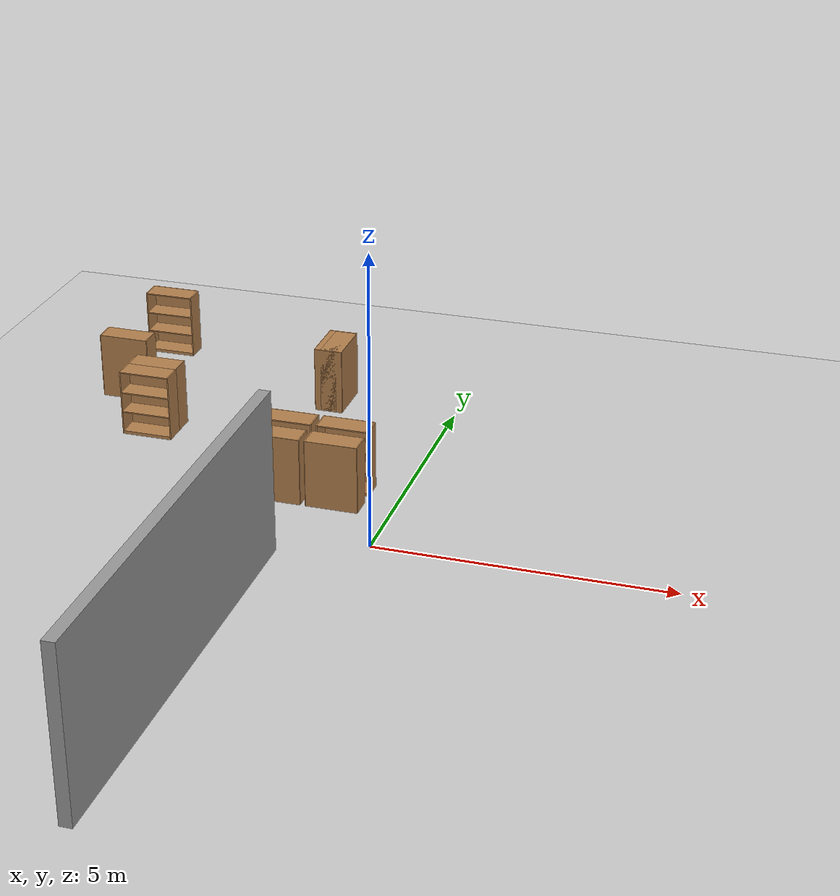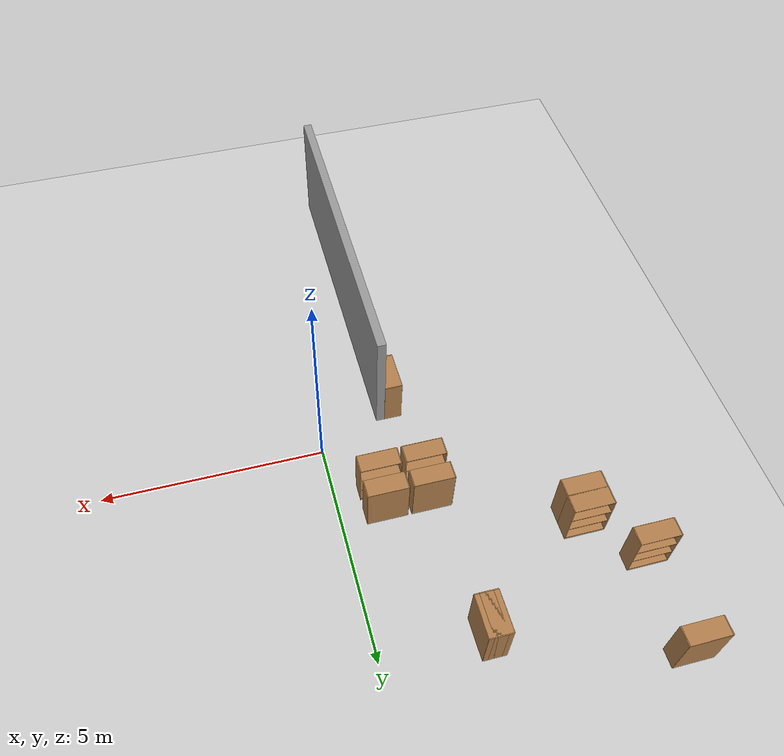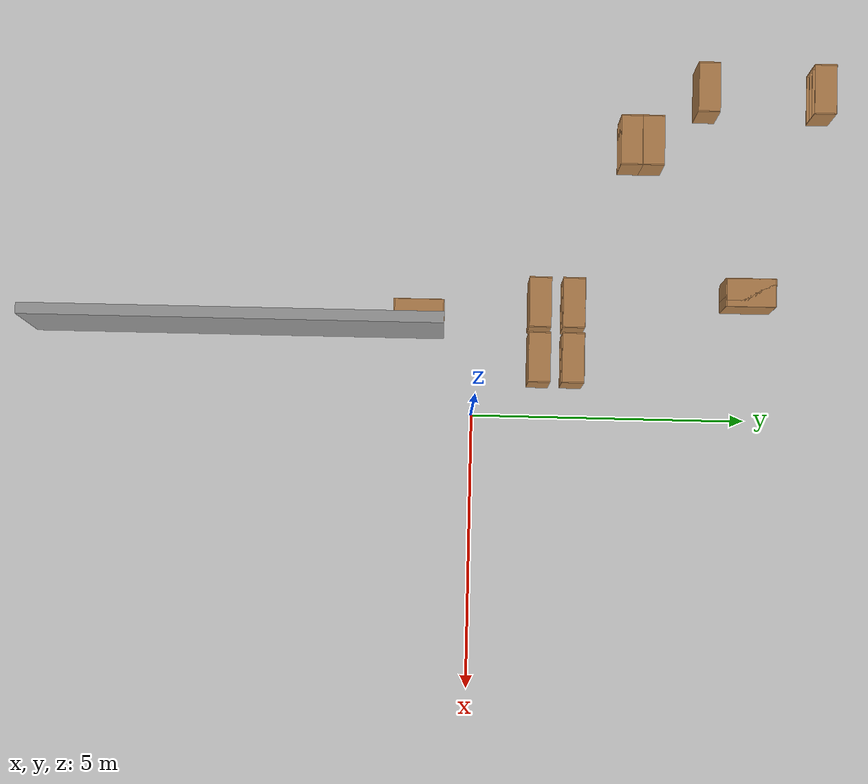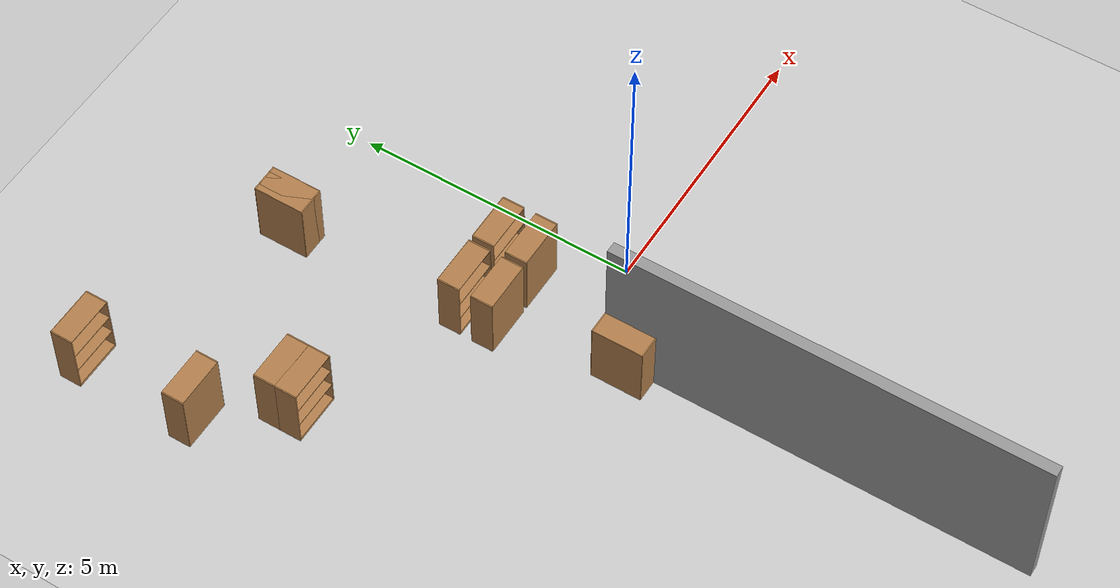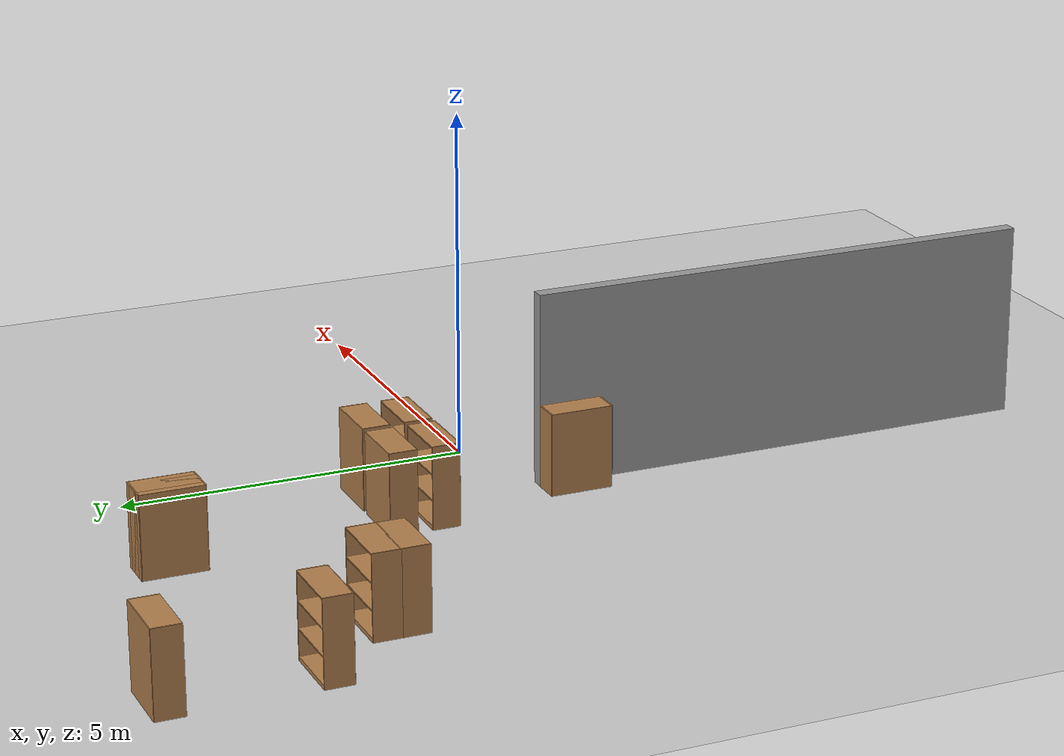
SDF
<sdf version="1.4">
 <world name="default">
  <include><uri>model://sun</uri></include>
  <include><uri>model://ground_plane</uri></include>
  <model name="bookshelf">
   <static>1</static>
   <link name="link">
    <inertial><mass>1</mass></inertial>
    <collision name="back">
     <pose>0 0.005 0.6 0 -0 0</pose>
     <geometry><box><size>0.9 0.01 1.2</size></box></geometry>
    </collision>
    <visual name="visual1">
     <pose>0 0.005 0.6 0 -0 0</pose>
     <geometry><box><size>0.9 0.01 1.2</size></box></geometry>
     <material>
      <script><uri>file://media/materials/scripts/gazebo.material</uri><name>Gazebo/Wood</name></script>
     </material>
    </visual>
    <collision name="left_side">
     <pose>0.45 -0.195 0.6 0 -0 0</pose>
     <geometry><box><size>0.02 0.4 1.2</size></box></geometry>
    </collision>
    <visual name="visual2">
     <pose>0.45 -0.195 0.6 0 -0 0</pose>
     <geometry><box><size>0.02 0.4 1.2</size></box></geometry>
     <material>
      <script><uri>file://media/materials/scripts/gazebo.material</uri><name>Gazebo/Wood</name></script>
     </material>
    </visual>
    <collision name="right_side">
     <pose>-0.45 -0.195 0.6 0 -0 0</pose>
     <geometry><box><size>0.02 0.4 1.2</size></box></geometry>
    </collision>
    <visual name="visual3">
     <pose>-0.45 -0.195 0.6 0 -0 0</pose>
     <geometry><box><size>0.02 0.4 1.2</size></box></geometry>
     <material>
      <script><uri>file://media/materials/scripts/gazebo.material</uri><name>Gazebo/Wood</name></script>
     </material>
    </visual>
    <collision name="bottom">
     <pose>0 -0.195 0.03 0 -0 0</pose>
     <geometry><box><size>0.88 0.4 0.06</size></box></geometry>
    </collision>
    <visual name="visual4">
     <pose>0 -0.195 0.03 0 -0 0</pose>
     <geometry><box><size>0.88 0.4 0.06</size></box></geometry>
     <material>
      <script><uri>file://media/materials/scripts/gazebo.material</uri><name>Gazebo/Wood</name></script>
     </material>
    </visual>
    <collision name="top">
     <pose>0 -0.195 1.19 0 -0 0</pose>
     <geometry><box><size>0.88 0.4 0.02</size></box></geometry>
    </collision>
    <visual name="visual5">
     <pose>0 -0.195 1.19 0 -0 0</pose>
     <geometry><box><size>0.88 0.4 0.02</size></box></geometry>
     <material>
      <script><uri>file://media/materials/scripts/gazebo.material</uri><name>Gazebo/Wood</name></script>
     </material>
    </visual>
    <collision name="low_shelf">
     <pose>0 -0.195 0.43 0 -0 0</pose>
     <geometry><box><size>0.88 0.4 0.02</size></box></geometry>
    </collision>
    <visual name="visual6">
     <pose>0 -0.195 0.43 0 -0 0</pose>
     <geometry><box><size>0.88 0.4 0.02</size></box></geometry>
     <material>
      <script><uri>file://media/materials/scripts/gazebo.material</uri><name>Gazebo/Wood</name></script>
     </material>
    </visual>
    <collision name="high_shelf">
     <pose>0 -0.195 0.8 0 -0 0</pose>
     <geometry><box><size>0.88 0.4 0.02</size></box></geometry>
    </collision>
    <visual name="visual7">
     <pose>0 -0.195 0.8 0 -0 0</pose>
     <geometry><box><size>0.88 0.4 0.02</size></box></geometry>
     <material>
      <script><uri>file://media/materials/scripts/gazebo.material</uri><name>Gazebo/Wood</name></script>
     </material>
    </visual>
    <velocity_decay><linear>0</linear><angular>0</angular></velocity_decay>
   </link>
   <pose>-1 2 0 0 -0 0</pose>
  </model>
  <model name="bookshelf_0">
   <static>1</static>
   <link name="link">
    <inertial><mass>1</mass></inertial>
    <collision name="back">
     <pose>0 0.005 0.6 0 -0 0</pose>
     <geometry><box><size>0.9 0.01 1.2</size></box></geometry>
    </collision>
    <visual name="visual1">
     <pose>0 0.005 0.6 0 -0 0</pose>
     <geometry><box><size>0.9 0.01 1.2</size></box></geometry>
     <material>
      <script><uri>file://media/materials/scripts/gazebo.material</uri><name>Gazebo/Wood</name></script>
     </material>
    </visual>
    <collision name="left_side">
     <pose>0.45 -0.195 0.6 0 -0 0</pose>
     <geometry><box><size>0.02 0.4 1.2</size></box></geometry>
    </collision>
    <visual name="visual2">
     <pose>0.45 -0.195 0.6 0 -0 0</pose>
     <geometry><box><size>0.02 0.4 1.2</size></box></geometry>
     <material>
      <script><uri>file://media/materials/scripts/gazebo.material</uri><name>Gazebo/Wood</name></script>
     </material>
    </visual>
    <collision name="right_side">
     <pose>-0.45 -0.195 0.6 0 -0 0</pose>
     <geometry><box><size>0.02 0.4 1.2</size></box></geometry>
    </collision>
    <visual name="visual3">
     <pose>-0.45 -0.195 0.6 0 -0 0</pose>
     <geometry><box><size>0.02 0.4 1.2</size></box></geometry>
     <material>
      <script><uri>file://media/materials/scripts/gazebo.material</uri><name>Gazebo/Wood</name></script>
     </material>
    </visual>
    <collision name="bottom">
     <pose>0 -0.195 0.03 0 -0 0</pose>
     <geometry><box><size>0.88 0.4 0.06</size></box></geometry>
    </collision>
    <visual name="visual4">
     <pose>0 -0.195 0.03 0 -0 0</pose>
     <geometry><box><size>0.88 0.4 0.06</size></box></geometry>
     <material>
      <script><uri>file://media/materials/scripts/gazebo.material</uri><name>Gazebo/Wood</name></script>
     </material>
    </visual>
    <collision name="top">
     <pose>0 -0.195 1.19 0 -0 0</pose>
     <geometry><box><size>0.88 0.4 0.02</size></box></geometry>
    </collision>
    <visual name="visual5">
     <pose>0 -0.195 1.19 0 -0 0</pose>
     <geometry><box><size>0.88 0.4 0.02</size></box></geometry>
     <material>
      <script><uri>file://media/materials/scripts/gazebo.material</uri><name>Gazebo/Wood</name></script>
     </material>
    </visual>
    <collision name="low_shelf">
     <pose>0 -0.195 0.43 0 -0 0</pose>
     <geometry><box><size>0.88 0.4 0.02</size></box></geometry>
    </collision>
    <visual name="visual6">
     <pose>0 -0.195 0.43 0 -0 0</pose>
     <geometry><box><size>0.88 0.4 0.02</size></box></geometry>
     <material>
      <script><uri>file://media/materials/scripts/gazebo.material</uri><name>Gazebo/Wood</name></script>
     </material>
    </visual>
    <collision name="high_shelf">
     <pose>0 -0.195 0.8 0 -0 0</pose>
     <geometry><box><size>0.88 0.4 0.02</size></box></geometry>
    </collision>
    <visual name="visual7">
     <pose>0 -0.195 0.8 0 -0 0</pose>
     <geometry><box><size>0.88 0.4 0.02</size></box></geometry>
     <material>
      <script><uri>file://media/materials/scripts/gazebo.material</uri><name>Gazebo/Wood</name></script>
     </material>
    </visual>
    <velocity_decay><linear>0</linear><angular>0</angular></velocity_decay>
   </link>
   <pose>-2 1 0 0 0 -3.14159</pose>
  </model>
  <model name="bookshelf_2">
   <static>1</static>
   <link name="link">
    <inertial><mass>1</mass></inertial>
    <collision name="back">
     <pose>0 0.005 0.6 0 -0 0</pose>
     <geometry><box><size>0.9 0.01 1.2</size></box></geometry>
    </collision>
    <visual name="visual1">
     <pose>0 0.005 0.6 0 -0 0</pose>
     <geometry><box><size>0.9 0.01 1.2</size></box></geometry>
     <material>
      <script><uri>file://media/materials/scripts/gazebo.material</uri><name>Gazebo/Wood</name></script>
     </material>
    </visual>
    <collision name="left_side">
     <pose>0.45 -0.195 0.6 0 -0 0</pose>
     <geometry><box><size>0.02 0.4 1.2</size></box></geometry>
    </collision>
    <visual name="visual2">
     <pose>0.45 -0.195 0.6 0 -0 0</pose>
     <geometry><box><size>0.02 0.4 1.2</size></box></geometry>
     <material>
      <script><uri>file://media/materials/scripts/gazebo.material</uri><name>Gazebo/Wood</name></script>
     </material>
    </visual>
    <collision name="right_side">
     <pose>-0.45 -0.195 0.6 0 -0 0</pose>
     <geometry><box><size>0.02 0.4 1.2</size></box></geometry>
    </collision>
    <visual name="visual3">
     <pose>-0.45 -0.195 0.6 0 -0 0</pose>
     <geometry><box><size>0.02 0.4 1.2</size></box></geometry>
     <material>
      <script><uri>file://media/materials/scripts/gazebo.material</uri><name>Gazebo/Wood</name></script>
     </material>
    </visual>
    <collision name="bottom">
     <pose>0 -0.195 0.03 0 -0 0</pose>
     <geometry><box><size>0.88 0.4 0.06</size></box></geometry>
    </collision>
    <visual name="visual4">
     <pose>0 -0.195 0.03 0 -0 0</pose>
     <geometry><box><size>0.88 0.4 0.06</size></box></geometry>
     <material>
      <script><uri>file://media/materials/scripts/gazebo.material</uri><name>Gazebo/Wood</name></script>
     </material>
    </visual>
    <collision name="top">
     <pose>0 -0.195 1.19 0 -0 0</pose>
     <geometry><box><size>0.88 0.4 0.02</size></box></geometry>
    </collision>
    <visual name="visual5">
     <pose>0 -0.195 1.19 0 -0 0</pose>
     <geometry><box><size>0.88 0.4 0.02</size></box></geometry>
     <material>
      <script><uri>file://media/materials/scripts/gazebo.material</uri><name>Gazebo/Wood</name></script>
     </material>
    </visual>
    <collision name="low_shelf">
     <pose>0 -0.195 0.43 0 -0 0</pose>
     <geometry><box><size>0.88 0.4 0.02</size></box></geometry>
    </collision>
    <visual name="visual6">
     <pose>0 -0.195 0.43 0 -0 0</pose>
     <geometry><box><size>0.88 0.4 0.02</size></box></geometry>
     <material>
      <script><uri>file://media/materials/scripts/gazebo.material</uri><name>Gazebo/Wood</name></script>
     </material>
    </visual>
    <collision name="high_shelf">
     <pose>0 -0.195 0.8 0 -0 0</pose>
     <geometry><box><size>0.88 0.4 0.02</size></box></geometry>
    </collision>
    <visual name="visual7">
     <pose>0 -0.195 0.8 0 -0 0</pose>
     <geometry><box><size>0.88 0.4 0.02</size></box></geometry>
     <material>
      <script><uri>file://media/materials/scripts/gazebo.material</uri><name>Gazebo/Wood</name></script>
     </material>
    </visual>
    <velocity_decay><linear>0</linear><angular>0</angular></velocity_decay>
   </link>
   <pose>-2 2 0 0 -0 0</pose>
  </model>
  <model name="bookshelf_4">
   <static>1</static>
   <link name="link">
    <inertial><mass>1</mass></inertial>
    <collision name="back">
     <pose>0 0.005 0.6 0 -0 0</pose>
     <geometry><box><size>0.9 0.01 1.2</size></box></geometry>
    </collision>
    <visual name="visual1">
     <pose>0 0.005 0.6 0 -0 0</pose>
     <geometry><box><size>0.9 0.01 1.2</size></box></geometry>
     <material>
      <script><uri>file://media/materials/scripts/gazebo.material</uri><name>Gazebo/Wood</name></script>
     </material>
    </visual>
    <collision name="left_side">
     <pose>0.45 -0.195 0.6 0 -0 0</pose>
     <geometry><box><size>0.02 0.4 1.2</size></box></geometry>
    </collision>
    <visual name="visual2">
     <pose>0.45 -0.195 0.6 0 -0 0</pose>
     <geometry><box><size>0.02 0.4 1.2</size></box></geometry>
     <material>
      <script><uri>file://media/materials/scripts/gazebo.material</uri><name>Gazebo/Wood</name></script>
     </material>
    </visual>
    <collision name="right_side">
     <pose>-0.45 -0.195 0.6 0 -0 0</pose>
     <geometry><box><size>0.02 0.4 1.2</size></box></geometry>
    </collision>
    <visual name="visual3">
     <pose>-0.45 -0.195 0.6 0 -0 0</pose>
     <geometry><box><size>0.02 0.4 1.2</size></box></geometry>
     <material>
      <script><uri>file://media/materials/scripts/gazebo.material</uri><name>Gazebo/Wood</name></script>
     </material>
    </visual>
    <collision name="bottom">
     <pose>0 -0.195 0.03 0 -0 0</pose>
     <geometry><box><size>0.88 0.4 0.06</size></box></geometry>
    </collision>
    <visual name="visual4">
     <pose>0 -0.195 0.03 0 -0 0</pose>
     <geometry><box><size>0.88 0.4 0.06</size></box></geometry>
     <material>
      <script><uri>file://media/materials/scripts/gazebo.material</uri><name>Gazebo/Wood</name></script>
     </material>
    </visual>
    <collision name="top">
     <pose>0 -0.195 1.19 0 -0 0</pose>
     <geometry><box><size>0.88 0.4 0.02</size></box></geometry>
    </collision>
    <visual name="visual5">
     <pose>0 -0.195 1.19 0 -0 0</pose>
     <geometry><box><size>0.88 0.4 0.02</size></box></geometry>
     <material>
      <script><uri>file://media/materials/scripts/gazebo.material</uri><name>Gazebo/Wood</name></script>
     </material>
    </visual>
    <collision name="low_shelf">
     <pose>0 -0.195 0.43 0 -0 0</pose>
     <geometry><box><size>0.88 0.4 0.02</size></box></geometry>
    </collision>
    <visual name="visual6">
     <pose>0 -0.195 0.43 0 -0 0</pose>
     <geometry><box><size>0.88 0.4 0.02</size></box></geometry>
     <material>
      <script><uri>file://media/materials/scripts/gazebo.material</uri><name>Gazebo/Wood</name></script>
     </material>
    </visual>
    <collision name="high_shelf">
     <pose>0 -0.195 0.8 0 -0 0</pose>
     <geometry><box><size>0.88 0.4 0.02</size></box></geometry>
    </collision>
    <visual name="visual7">
     <pose>0 -0.195 0.8 0 -0 0</pose>
     <geometry><box><size>0.88 0.4 0.02</size></box></geometry>
     <material>
      <script><uri>file://media/materials/scripts/gazebo.material</uri><name>Gazebo/Wood</name></script>
     </material>
    </visual>
    <velocity_decay><linear>0</linear><angular>0</angular></velocity_decay>
   </link>
   <pose>-1 1 0 0 0 -3.14159</pose>
  </model>
  <model name="bookshelf_8">
   <static>1</static>
   <link name="link">
    <inertial><mass>1</mass></inertial>
    <collision name="back">
     <pose>0 0.005 0.6 0 -0 0</pose>
     <geometry><box><size>0.9 0.01 1.2</size></box></geometry>
    </collision>
    <visual name="visual1">
     <pose>0 0.005 0.6 0 -0 0</pose>
     <geometry><box><size>0.9 0.01 1.2</size></box></geometry>
     <material>
      <script><uri>file://media/materials/scripts/gazebo.material</uri><name>Gazebo/Wood</name></script>
     </material>
    </visual>
    <collision name="left_side">
     <pose>0.45 -0.195 0.6 0 -0 0</pose>
     <geometry><box><size>0.02 0.4 1.2</size></box></geometry>
    </collision>
    <visual name="visual2">
     <pose>0.45 -0.195 0.6 0 -0 0</pose>
     <geometry><box><size>0.02 0.4 1.2</size></box></geometry>
     <material>
      <script><uri>file://media/materials/scripts/gazebo.material</uri><name>Gazebo/Wood</name></script>
     </material>
    </visual>
    <collision name="right_side">
     <pose>-0.45 -0.195 0.6 0 -0 0</pose>
     <geometry><box><size>0.02 0.4 1.2</size></box></geometry>
    </collision>
    <visual name="visual3">
     <pose>-0.45 -0.195 0.6 0 -0 0</pose>
     <geometry><box><size>0.02 0.4 1.2</size></box></geometry>
     <material>
      <script><uri>file://media/materials/scripts/gazebo.material</uri><name>Gazebo/Wood</name></script>
     </material>
    </visual>
    <collision name="bottom">
     <pose>0 -0.195 0.03 0 -0 0</pose>
     <geometry><box><size>0.88 0.4 0.06</size></box></geometry>
    </collision>
    <visual name="visual4">
     <pose>0 -0.195 0.03 0 -0 0</pose>
     <geometry><box><size>0.88 0.4 0.06</size></box></geometry>
     <material>
      <script><uri>file://media/materials/scripts/gazebo.material</uri><name>Gazebo/Wood</name></script>
     </material>
    </visual>
    <collision name="top">
     <pose>0 -0.195 1.19 0 -0 0</pose>
     <geometry><box><size>0.88 0.4 0.02</size></box></geometry>
    </collision>
    <visual name="visual5">
     <pose>0 -0.195 1.19 0 -0 0</pose>
     <geometry><box><size>0.88 0.4 0.02</size></box></geometry>
     <material>
      <script><uri>file://media/materials/scripts/gazebo.material</uri><name>Gazebo/Wood</name></script>
     </material>
    </visual>
    <collision name="low_shelf">
     <pose>0 -0.195 0.43 0 -0 0</pose>
     <geometry><box><size>0.88 0.4 0.02</size></box></geometry>
    </collision>
    <visual name="visual6">
     <pose>0 -0.195 0.43 0 -0 0</pose>
     <geometry><box><size>0.88 0.4 0.02</size></box></geometry>
     <material>
      <script><uri>file://media/materials/scripts/gazebo.material</uri><name>Gazebo/Wood</name></script>
     </material>
    </visual>
    <collision name="high_shelf">
     <pose>0 -0.195 0.8 0 -0 0</pose>
     <geometry><box><size>0.88 0.4 0.02</size></box></geometry>
    </collision>
    <visual name="visual7">
     <pose>0 -0.195 0.8 0 -0 0</pose>
     <geometry><box><size>0.88 0.4 0.02</size></box></geometry>
     <material>
      <script><uri>file://media/materials/scripts/gazebo.material</uri><name>Gazebo/Wood</name></script>
     </material>
    </visual>
    <velocity_decay><linear>0</linear><angular>0</angular></velocity_decay>
   </link>
   <pose>-5 3 0 0 -0 3.14159</pose>
  </model>
  <model name="bookshelf_9">
   <static>1</static>
   <link name="link">
    <inertial><mass>1</mass></inertial>
    <collision name="back">
     <pose>0 0.005 0.6 0 -0 0</pose>
     <geometry><box><size>0.9 0.01 1.2</size></box></geometry>
    </collision>
    <visual name="visual1">
     <pose>0 0.005 0.6 0 -0 0</pose>
     <geometry><box><size>0.9 0.01 1.2</size></box></geometry>
     <material>
      <script><uri>file://media/materials/scripts/gazebo.material</uri><name>Gazebo/Wood</name></script>
     </material>
    </visual>
    <collision name="left_side">
     <pose>0.45 -0.195 0.6 0 -0 0</pose>
     <geometry><box><size>0.02 0.4 1.2</size></box></geometry>
    </collision>
    <visual name="visual2">
     <pose>0.45 -0.195 0.6 0 -0 0</pose>
     <geometry><box><size>0.02 0.4 1.2</size></box></geometry>
     <material>
      <script><uri>file://media/materials/scripts/gazebo.material</uri><name>Gazebo/Wood</name></script>
     </material>
    </visual>
    <collision name="right_side">
     <pose>-0.45 -0.195 0.6 0 -0 0</pose>
     <geometry><box><size>0.02 0.4 1.2</size></box></geometry>
    </collision>
    <visual name="visual3">
     <pose>-0.45 -0.195 0.6 0 -0 0</pose>
     <geometry><box><size>0.02 0.4 1.2</size></box></geometry>
     <material>
      <script><uri>file://media/materials/scripts/gazebo.material</uri><name>Gazebo/Wood</name></script>
     </material>
    </visual>
    <collision name="bottom">
     <pose>0 -0.195 0.03 0 -0 0</pose>
     <geometry><box><size>0.88 0.4 0.06</size></box></geometry>
    </collision>
    <visual name="visual4">
     <pose>0 -0.195 0.03 0 -0 0</pose>
     <geometry><box><size>0.88 0.4 0.06</size></box></geometry>
     <material>
      <script><uri>file://media/materials/scripts/gazebo.material</uri><name>Gazebo/Wood</name></script>
     </material>
    </visual>
    <collision name="top">
     <pose>0 -0.195 1.19 0 -0 0</pose>
     <geometry><box><size>0.88 0.4 0.02</size></box></geometry>
    </collision>
    <visual name="visual5">
     <pose>0 -0.195 1.19 0 -0 0</pose>
     <geometry><box><size>0.88 0.4 0.02</size></box></geometry>
     <material>
      <script><uri>file://media/materials/scripts/gazebo.material</uri><name>Gazebo/Wood</name></script>
     </material>
    </visual>
    <collision name="low_shelf">
     <pose>0 -0.195 0.43 0 -0 0</pose>
     <geometry><box><size>0.88 0.4 0.02</size></box></geometry>
    </collision>
    <visual name="visual6">
     <pose>0 -0.195 0.43 0 -0 0</pose>
     <geometry><box><size>0.88 0.4 0.02</size></box></geometry>
     <material>
      <script><uri>file://media/materials/scripts/gazebo.material</uri><name>Gazebo/Wood</name></script>
     </material>
    </visual>
    <collision name="high_shelf">
     <pose>0 -0.195 0.8 0 -0 0</pose>
     <geometry><box><size>0.88 0.4 0.02</size></box></geometry>
    </collision>
    <visual name="visual7">
     <pose>0 -0.195 0.8 0 -0 0</pose>
     <geometry><box><size>0.88 0.4 0.02</size></box></geometry>
     <material>
      <script><uri>file://media/materials/scripts/gazebo.material</uri><name>Gazebo/Wood</name></script>
     </material>
    </visual>
    <velocity_decay><linear>0</linear><angular>0</angular></velocity_decay>
   </link>
   <pose>-5 3 0 0 -0 0</pose>
  </model>
  <model name="bookshelf_10">
   <static>1</static>
   <link name="link">
    <inertial><mass>1</mass></inertial>
    <collision name="back">
     <pose>0 0.005 0.6 0 -0 0</pose>
     <geometry><box><size>0.9 0.01 1.2</size></box></geometry>
    </collision>
    <visual name="visual1">
     <pose>0 0.005 0.6 0 -0 0</pose>
     <geometry><box><size>0.9 0.01 1.2</size></box></geometry>
     <material>
      <script><uri>file://media/materials/scripts/gazebo.material</uri><name>Gazebo/Wood</name></script>
     </material>
    </visual>
    <collision name="left_side">
     <pose>0.45 -0.195 0.6 0 -0 0</pose>
     <geometry><box><size>0.02 0.4 1.2</size></box></geometry>
    </collision>
    <visual name="visual2">
     <pose>0.45 -0.195 0.6 0 -0 0</pose>
     <geometry><box><size>0.02 0.4 1.2</size></box></geometry>
     <material>
      <script><uri>file://media/materials/scripts/gazebo.material</uri><name>Gazebo/Wood</name></script>
     </material>
    </visual>
    <collision name="right_side">
     <pose>-0.45 -0.195 0.6 0 -0 0</pose>
     <geometry><box><size>0.02 0.4 1.2</size></box></geometry>
    </collision>
    <visual name="visual3">
     <pose>-0.45 -0.195 0.6 0 -0 0</pose>
     <geometry><box><size>0.02 0.4 1.2</size></box></geometry>
     <material>
      <script><uri>file://media/materials/scripts/gazebo.material</uri><name>Gazebo/Wood</name></script>
     </material>
    </visual>
    <collision name="bottom">
     <pose>0 -0.195 0.03 0 -0 0</pose>
     <geometry><box><size>0.88 0.4 0.06</size></box></geometry>
    </collision>
    <visual name="visual4">
     <pose>0 -0.195 0.03 0 -0 0</pose>
     <geometry><box><size>0.88 0.4 0.06</size></box></geometry>
     <material>
      <script><uri>file://media/materials/scripts/gazebo.material</uri><name>Gazebo/Wood</name></script>
     </material>
    </visual>
    <collision name="top">
     <pose>0 -0.195 1.19 0 -0 0</pose>
     <geometry><box><size>0.88 0.4 0.02</size></box></geometry>
    </collision>
    <visual name="visual5">
     <pose>0 -0.195 1.19 0 -0 0</pose>
     <geometry><box><size>0.88 0.4 0.02</size></box></geometry>
     <material>
      <script><uri>file://media/materials/scripts/gazebo.material</uri><name>Gazebo/Wood</name></script>
     </material>
    </visual>
    <collision name="low_shelf">
     <pose>0 -0.195 0.43 0 -0 0</pose>
     <geometry><box><size>0.88 0.4 0.02</size></box></geometry>
    </collision>
    <visual name="visual6">
     <pose>0 -0.195 0.43 0 -0 0</pose>
     <geometry><box><size>0.88 0.4 0.02</size></box></geometry>
     <material>
      <script><uri>file://media/materials/scripts/gazebo.material</uri><name>Gazebo/Wood</name></script>
     </material>
    </visual>
    <collision name="high_shelf">
     <pose>0 -0.195 0.8 0 -0 0</pose>
     <geometry><box><size>0.88 0.4 0.02</size></box></geometry>
    </collision>
    <visual name="visual7">
     <pose>0 -0.195 0.8 0 -0 0</pose>
     <geometry><box><size>0.88 0.4 0.02</size></box></geometry>
     <material>
      <script><uri>file://media/materials/scripts/gazebo.material</uri><name>Gazebo/Wood</name></script>
     </material>
    </visual>
    <velocity_decay><linear>0</linear><angular>0</angular></velocity_decay>
   </link>
   <pose>-2 -1 0 0 -0 1.5708</pose>
  </model>
  <model name="grey_wall_0">
   <static>1</static>
   <link name="link">
    <pose>0 0 1.4 0 -0 0</pose>
    <collision name="collision"><geometry><box><size>7.5 0.2 2.8</size></box></geometry></collision>
    <visual name="visual">
     <cast_shadows>0</cast_shadows>
     <geometry><box><size>7.5 0.2 2.8</size></box></geometry>
     <material>
      <script>
       <uri>model://grey_wall/materials/scripts</uri>
       <uri>model://grey_wall/materials/textures</uri>
       <name>vrc/grey_wall</name>
      </script>
     </material>
    </visual>
    <velocity_decay><linear>0</linear><angular>0</angular></velocity_decay>
   </link>
   <pose>-1.50961 -4.29402 0 0 -0 1.5708</pose>
  </model>
  <model name="bookshelf_18">
   <static>1</static>
   <link name="link">
    <inertial><mass>1</mass></inertial>
    <collision name="back">
     <pose>0 0.005 0.6 0 -0 0</pose>
     <geometry><box><size>0.9 0.01 1.2</size></box></geometry>
    </collision>
    <visual name="visual1">
     <pose>0 0.005 0.6 0 -0 0</pose>
     <geometry><box><size>0.9 0.01 1.2</size></box></geometry>
     <material>
      <script><uri>file://media/materials/scripts/gazebo.material</uri><name>Gazebo/Wood</name></script>
     </material>
    </visual>
    <collision name="left_side">
     <pose>0.45 -0.195 0.6 0 -0 0</pose>
     <geometry><box><size>0.02 0.4 1.2</size></box></geometry>
    </collision>
    <visual name="visual2">
     <pose>0.45 -0.195 0.6 0 -0 0</pose>
     <geometry><box><size>0.02 0.4 1.2</size></box></geometry>
     <material>
      <script><uri>file://media/materials/scripts/gazebo.material</uri><name>Gazebo/Wood</name></script>
     </material>
    </visual>
    <collision name="right_side">
     <pose>-0.45 -0.195 0.6 0 -0 0</pose>
     <geometry><box><size>0.02 0.4 1.2</size></box></geometry>
    </collision>
    <visual name="visual3">
     <pose>-0.45 -0.195 0.6 0 -0 0</pose>
     <geometry><box><size>0.02 0.4 1.2</size></box></geometry>
     <material>
      <script><uri>file://media/materials/scripts/gazebo.material</uri><name>Gazebo/Wood</name></script>
     </material>
    </visual>
    <collision name="bottom">
     <pose>0 -0.195 0.03 0 -0 0</pose>
     <geometry><box><size>0.88 0.4 0.06</size></box></geometry>
    </collision>
    <visual name="visual4">
     <pose>0 -0.195 0.03 0 -0 0</pose>
     <geometry><box><size>0.88 0.4 0.06</size></box></geometry>
     <material>
      <script><uri>file://media/materials/scripts/gazebo.material</uri><name>Gazebo/Wood</name></script>
     </material>
    </visual>
    <collision name="top">
     <pose>0 -0.195 1.19 0 -0 0</pose>
     <geometry><box><size>0.88 0.4 0.02</size></box></geometry>
    </collision>
    <visual name="visual5">
     <pose>0 -0.195 1.19 0 -0 0</pose>
     <geometry><box><size>0.88 0.4 0.02</size></box></geometry>
     <material>
      <script><uri>file://media/materials/scripts/gazebo.material</uri><name>Gazebo/Wood</name></script>
     </material>
    </visual>
    <collision name="low_shelf">
     <pose>0 -0.195 0.43 0 -0 0</pose>
     <geometry><box><size>0.88 0.4 0.02</size></box></geometry>
    </collision>
    <visual name="visual6">
     <pose>0 -0.195 0.43 0 -0 0</pose>
     <geometry><box><size>0.88 0.4 0.02</size></box></geometry>
     <material>
      <script><uri>file://media/materials/scripts/gazebo.material</uri><name>Gazebo/Wood</name></script>
     </material>
    </visual>
    <collision name="high_shelf">
     <pose>0 -0.195 0.8 0 -0 0</pose>
     <geometry><box><size>0.88 0.4 0.02</size></box></geometry>
    </collision>
    <visual name="visual7">
     <pose>0 -0.195 0.8 0 -0 0</pose>
     <geometry><box><size>0.88 0.4 0.02</size></box></geometry>
     <material>
      <script><uri>file://media/materials/scripts/gazebo.material</uri><name>Gazebo/Wood</name></script>
     </material>
    </visual>
    <velocity_decay><linear>0</linear><angular>0</angular></velocity_decay>
   </link>
   <pose>-2 5 0 0 0 -1.5708</pose>
  </model>
  <model name="bookshelf_19">
   <static>1</static>
   <link name="link">
    <inertial><mass>1</mass></inertial>
    <collision name="back">
     <pose>0 0.005 0.6 0 -0 0</pose>
     <geometry><box><size>0.9 0.01 1.2</size></box></geometry>
    </collision>
    <visual name="visual1">
     <pose>0 0.005 0.6 0 -0 0</pose>
     <geometry><box><size>0.9 0.01 1.2</size></box></geometry>
     <material>
      <script><uri>file://media/materials/scripts/gazebo.material</uri><name>Gazebo/Wood</name></script>
     </material>
    </visual>
    <collision name="left_side">
     <pose>0.45 -0.195 0.6 0 -0 0</pose>
     <geometry><box><size>0.02 0.4 1.2</size></box></geometry>
    </collision>
    <visual name="visual2">
     <pose>0.45 -0.195 0.6 0 -0 0</pose>
     <geometry><box><size>0.02 0.4 1.2</size></box></geometry>
     <material>
      <script><uri>file://media/materials/scripts/gazebo.material</uri><name>Gazebo/Wood</name></script>
     </material>
    </visual>
    <collision name="right_side">
     <pose>-0.45 -0.195 0.6 0 -0 0</pose>
     <geometry><box><size>0.02 0.4 1.2</size></box></geometry>
    </collision>
    <visual name="visual3">
     <pose>-0.45 -0.195 0.6 0 -0 0</pose>
     <geometry><box><size>0.02 0.4 1.2</size></box></geometry>
     <material>
      <script><uri>file://media/materials/scripts/gazebo.material</uri><name>Gazebo/Wood</name></script>
     </material>
    </visual>
    <collision name="bottom">
     <pose>0 -0.195 0.03 0 -0 0</pose>
     <geometry><box><size>0.88 0.4 0.06</size></box></geometry>
    </collision>
    <visual name="visual4">
     <pose>0 -0.195 0.03 0 -0 0</pose>
     <geometry><box><size>0.88 0.4 0.06</size></box></geometry>
     <material>
      <script><uri>file://media/materials/scripts/gazebo.material</uri><name>Gazebo/Wood</name></script>
     </material>
    </visual>
    <collision name="top">
     <pose>0 -0.195 1.19 0 -0 0</pose>
     <geometry><box><size>0.88 0.4 0.02</size></box></geometry>
    </collision>
    <visual name="visual5">
     <pose>0 -0.195 1.19 0 -0 0</pose>
     <geometry><box><size>0.88 0.4 0.02</size></box></geometry>
     <material>
      <script><uri>file://media/materials/scripts/gazebo.material</uri><name>Gazebo/Wood</name></script>
     </material>
    </visual>
    <collision name="low_shelf">
     <pose>0 -0.195 0.43 0 -0 0</pose>
     <geometry><box><size>0.88 0.4 0.02</size></box></geometry>
    </collision>
    <visual name="visual6">
     <pose>0 -0.195 0.43 0 -0 0</pose>
     <geometry><box><size>0.88 0.4 0.02</size></box></geometry>
     <material>
      <script><uri>file://media/materials/scripts/gazebo.material</uri><name>Gazebo/Wood</name></script>
     </material>
    </visual>
    <collision name="high_shelf">
     <pose>0 -0.195 0.8 0 -0 0</pose>
     <geometry><box><size>0.88 0.4 0.02</size></box></geometry>
    </collision>
    <visual name="visual7">
     <pose>0 -0.195 0.8 0 -0 0</pose>
     <geometry><box><size>0.88 0.4 0.02</size></box></geometry>
     <material>
      <script><uri>file://media/materials/scripts/gazebo.material</uri><name>Gazebo/Wood</name></script>
     </material>
    </visual>
    <velocity_decay><linear>0</linear><angular>0</angular></velocity_decay>
   </link>
   <pose>-2.5 5 0 0 -0 1.5708</pose>
  </model>
  <model name="bookshelf_20">
   <static>1</static>
   <link name="link">
    <inertial><mass>1</mass></inertial>
    <collision name="back">
     <pose>0 0.005 0.6 0 -0 0</pose>
     <geometry><box><size>0.9 0.01 1.2</size></box></geometry>
    </collision>
    <visual name="visual1">
     <pose>0 0.005 0.6 0 -0 0</pose>
     <geometry><box><size>0.9 0.01 1.2</size></box></geometry>
     <material>
      <script><uri>file://media/materials/scripts/gazebo.material</uri><name>Gazebo/Wood</name></script>
     </material>
    </visual>
    <collision name="left_side">
     <pose>0.45 -0.195 0.6 0 -0 0</pose>
     <geometry><box><size>0.02 0.4 1.2</size></box></geometry>
    </collision>
    <visual name="visual2">
     <pose>0.45 -0.195 0.6 0 -0 0</pose>
     <geometry><box><size>0.02 0.4 1.2</size></box></geometry>
     <material>
      <script><uri>file://media/materials/scripts/gazebo.material</uri><name>Gazebo/Wood</name></script>
     </material>
    </visual>
    <collision name="right_side">
     <pose>-0.45 -0.195 0.6 0 -0 0</pose>
     <geometry><box><size>0.02 0.4 1.2</size></box></geometry>
    </collision>
    <visual name="visual3">
     <pose>-0.45 -0.195 0.6 0 -0 0</pose>
     <geometry><box><size>0.02 0.4 1.2</size></box></geometry>
     <material>
      <script><uri>file://media/materials/scripts/gazebo.material</uri><name>Gazebo/Wood</name></script>
     </material>
    </visual>
    <collision name="bottom">
     <pose>0 -0.195 0.03 0 -0 0</pose>
     <geometry><box><size>0.88 0.4 0.06</size></box></geometry>
    </collision>
    <visual name="visual4">
     <pose>0 -0.195 0.03 0 -0 0</pose>
     <geometry><box><size>0.88 0.4 0.06</size></box></geometry>
     <material>
      <script><uri>file://media/materials/scripts/gazebo.material</uri><name>Gazebo/Wood</name></script>
     </material>
    </visual>
    <collision name="top">
     <pose>0 -0.195 1.19 0 -0 0</pose>
     <geometry><box><size>0.88 0.4 0.02</size></box></geometry>
    </collision>
    <visual name="visual5">
     <pose>0 -0.195 1.19 0 -0 0</pose>
     <geometry><box><size>0.88 0.4 0.02</size></box></geometry>
     <material>
      <script><uri>file://media/materials/scripts/gazebo.material</uri><name>Gazebo/Wood</name></script>
     </material>
    </visual>
    <collision name="low_shelf">
     <pose>0 -0.195 0.43 0 -0 0</pose>
     <geometry><box><size>0.88 0.4 0.02</size></box></geometry>
    </collision>
    <visual name="visual6">
     <pose>0 -0.195 0.43 0 -0 0</pose>
     <geometry><box><size>0.88 0.4 0.02</size></box></geometry>
     <material>
      <script><uri>file://media/materials/scripts/gazebo.material</uri><name>Gazebo/Wood</name></script>
     </material>
    </visual>
    <collision name="high_shelf">
     <pose>0 -0.195 0.8 0 -0 0</pose>
     <geometry><box><size>0.88 0.4 0.02</size></box></geometry>
    </collision>
    <visual name="visual7">
     <pose>0 -0.195 0.8 0 -0 0</pose>
     <geometry><box><size>0.88 0.4 0.02</size></box></geometry>
     <material>
      <script><uri>file://media/materials/scripts/gazebo.material</uri><name>Gazebo/Wood</name></script>
     </material>
    </visual>
    <velocity_decay><linear>0</linear><angular>0</angular></velocity_decay>
   </link>
   <pose>-6 6.5 0 0 -0 0</pose>
  </model>
  <model name="bookshelf_21">
   <static>1</static>
   <link name="link">
    <inertial><mass>1</mass></inertial>
    <collision name="back">
     <pose>0 0.005 0.6 0 -0 0</pose>
     <geometry><box><size>0.9 0.01 1.2</size></box></geometry>
    </collision>
    <visual name="visual1">
     <pose>0 0.005 0.6 0 -0 0</pose>
     <geometry><box><size>0.9 0.01 1.2</size></box></geometry>
     <material>
      <script><uri>file://media/materials/scripts/gazebo.material</uri><name>Gazebo/Wood</name></script>
     </material>
    </visual>
    <collision name="left_side">
     <pose>0.45 -0.195 0.6 0 -0 0</pose>
     <geometry><box><size>0.02 0.4 1.2</size></box></geometry>
    </collision>
    <visual name="visual2">
     <pose>0.45 -0.195 0.6 0 -0 0</pose>
     <geometry><box><size>0.02 0.4 1.2</size></box></geometry>
     <material>
      <script><uri>file://media/materials/scripts/gazebo.material</uri><name>Gazebo/Wood</name></script>
     </material>
    </visual>
    <collision name="right_side">
     <pose>-0.45 -0.195 0.6 0 -0 0</pose>
     <geometry><box><size>0.02 0.4 1.2</size></box></geometry>
    </collision>
    <visual name="visual3">
     <pose>-0.45 -0.195 0.6 0 -0 0</pose>
     <geometry><box><size>0.02 0.4 1.2</size></box></geometry>
     <material>
      <script><uri>file://media/materials/scripts/gazebo.material</uri><name>Gazebo/Wood</name></script>
     </material>
    </visual>
    <collision name="bottom">
     <pose>0 -0.195 0.03 0 -0 0</pose>
     <geometry><box><size>0.88 0.4 0.06</size></box></geometry>
    </collision>
    <visual name="visual4">
     <pose>0 -0.195 0.03 0 -0 0</pose>
     <geometry><box><size>0.88 0.4 0.06</size></box></geometry>
     <material>
      <script><uri>file://media/materials/scripts/gazebo.material</uri><name>Gazebo/Wood</name></script>
     </material>
    </visual>
    <collision name="top">
     <pose>0 -0.195 1.19 0 -0 0</pose>
     <geometry><box><size>0.88 0.4 0.02</size></box></geometry>
    </collision>
    <visual name="visual5">
     <pose>0 -0.195 1.19 0 -0 0</pose>
     <geometry><box><size>0.88 0.4 0.02</size></box></geometry>
     <material>
      <script><uri>file://media/materials/scripts/gazebo.material</uri><name>Gazebo/Wood</name></script>
     </material>
    </visual>
    <collision name="low_shelf">
     <pose>0 -0.195 0.43 0 -0 0</pose>
     <geometry><box><size>0.88 0.4 0.02</size></box></geometry>
    </collision>
    <visual name="visual6">
     <pose>0 -0.195 0.43 0 -0 0</pose>
     <geometry><box><size>0.88 0.4 0.02</size></box></geometry>
     <material>
      <script><uri>file://media/materials/scripts/gazebo.material</uri><name>Gazebo/Wood</name></script>
     </material>
    </visual>
    <collision name="high_shelf">
     <pose>0 -0.195 0.8 0 -0 0</pose>
     <geometry><box><size>0.88 0.4 0.02</size></box></geometry>
    </collision>
    <visual name="visual7">
     <pose>0 -0.195 0.8 0 -0 0</pose>
     <geometry><box><size>0.88 0.4 0.02</size></box></geometry>
     <material>
      <script><uri>file://media/materials/scripts/gazebo.material</uri><name>Gazebo/Wood</name></script>
     </material>
    </visual>
    <velocity_decay><linear>0</linear><angular>0</angular></velocity_decay>
   </link>
   <pose>-6 4 0 0 0 -3.14159</pose>
  </model>
 </world>
</sdf>
